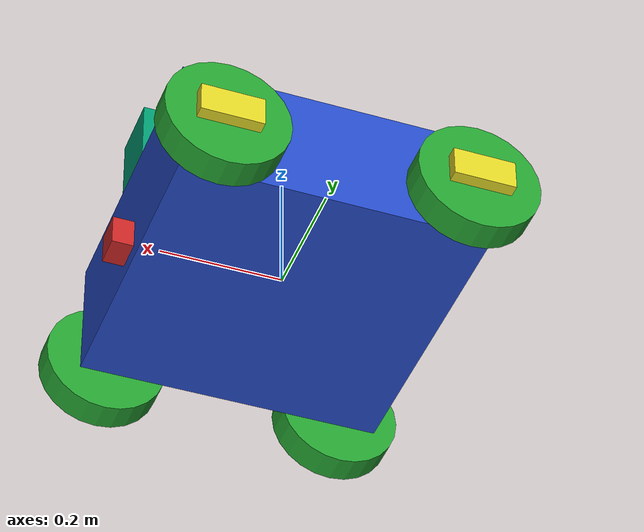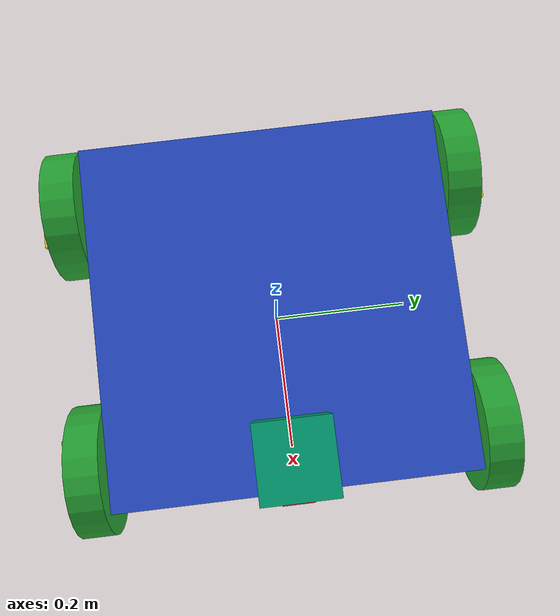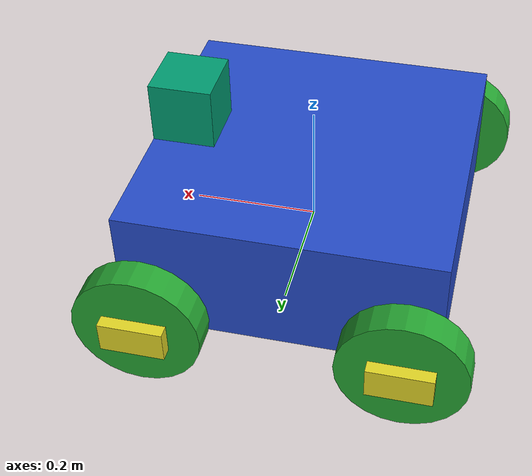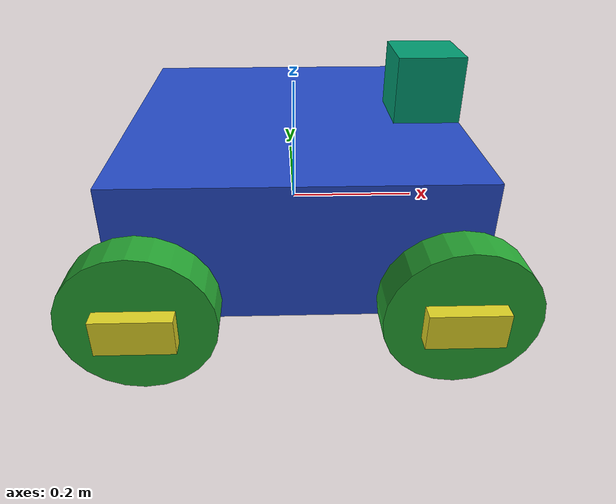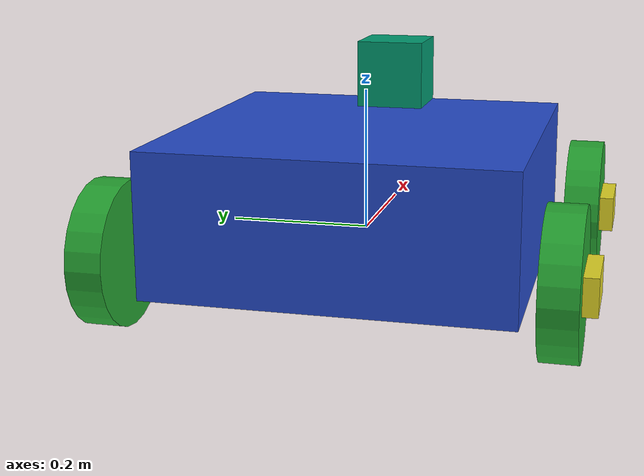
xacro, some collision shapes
<?xml version='1.0'?>

<robot name="atom" xmlns:xacro="http://www.ros.org/wiki/xacro">
	<xacro:property name="robot_name" value="atom" />
	<xacro:property name="robot_chassis_mass" value="15"/>
	<xacro:property name="robot_chassis_length" value="0.2"/>
	<xacro:property name="robot_chassis_radius" value="0.25"/>
	<xacro:property name="robot_caster_wheel_radius" value="0.05"/>
	<xacro:property name="robot_caster_wheel_radius_collision" value="0.0499"/>

	<xacro:property name="robot_wheel_mass" value="5"/>
	<xacro:property name="robot_wheel_length" value="0.05"/>
	<xacro:property name="robot_wheel_radius" value="0.1"/>

	<xacro:property name="camera_mass" value="0.1"/>
	<xacro:property name="hokoyu_mass" value="1e-5"/>

	<!-- Make Chassis of Bot -->
	<link name="chassis">
		<pose>0 0 0.1 0 0 0</pose>

		<inertial>
			<mass value="${robot_chassis_mass}"/>
      		<origin xyz="0.0 0 0" rpy=" 0 0 0"/>

      		<inertia
      			ixx="0.147116667" ixy="0" ixz="0"
      			iyy="0.334951167" iyz="0"
      			izz="0.3978345"
      		/>
		</inertial>

		<collision name="collision">
			<origin xyz="0 0 0.05" rpy=" 0 0 0"/>
			<geometry>
				<box size="0.5 0.5 0.2"/>
			</geometry>
		</collision>

		<visual name="chassis_visual">
			<origin xyz="0 0 0.05" rpy=" 0 0 0"/>
			<geometry>
				<box size="0.5 0.5 0.2"/>
			</geometry>

		</visual>

	</link>

	<!-- Right Wheel Back -->
	<link name="right_wheel_back">
		<inertial>
			<mass value="${robot_wheel_mass}"/>
			<origin xyz="0 0 0" rpy="0 1.5707 1.5707"/>
			<inertia
				ixx="0.1" ixy="0.0" ixz="0.0"
				iyy="0.1" iyz="0.0"
				izz="0.1"
			/>
		</inertial>

		<visual>
			<origin xyz="0 0 0" rpy="0 1.5707 1.5707"/>
			<geometry>
				<cylinder radius="${robot_wheel_radius}" length="${robot_wheel_length}"/>
			</geometry>
		</visual>

		<collision>
			<origin xyz="0 0 0" rpy="0 1.5707 1.5707"/>
			<geometry>
				<cylinder radius="${robot_wheel_radius}" length="${robot_wheel_length}"/>
			</geometry>
		</collision>

	</link>

	<!-- Cube -->

	<!-- Right Wheel Front-->
	<link name="right_wheel_front">
		<inertial>
			<mass value="${robot_wheel_mass}"/>
			<origin xyz="0 0 0" rpy="0 1.5707 1.5707"/>
			<inertia
				ixx="0.1" ixy="0.0" ixz="0.0"
				iyy="0.1" iyz="0.0"
				izz="0.1"
			/>
		</inertial>

		<visual>
			<origin xyz="0 0 0" rpy="0 1.5707 1.5707"/>
			<geometry>
				<cylinder radius="${robot_wheel_radius}" length="${robot_wheel_length}"/>
			</geometry>
		</visual>

		<collision>
			<origin xyz="0 0 0" rpy="0 1.5707 1.5707"/>
			<geometry>
				<cylinder radius="${robot_wheel_radius}" length="${robot_wheel_length}"/>
			</geometry>
		</collision>

	</link>

	<!-- Left wheel Back-->
	<link name="left_wheel_back">
		<inertial>
			<mass value="${robot_wheel_mass}"/>
			<origin xyz="0 0 0" rpy="0 1.5707 1.5707"/>
			<inertia
				ixx="0.1" ixy="0.0" ixz="0.0"
				iyy="0.1" iyz="0.0"
				izz="0.1"
			/>
		</inertial>

		<visual>
			<origin xyz="0 0 0" rpy="0 1.5707 1.5707"/>
			<geometry>
				<cylinder radius="${robot_wheel_radius}" length="${robot_wheel_length}"/>
			</geometry>
		</visual>

		<collision>
			<origin xyz="0 0 0" rpy="0 1.5707 1.5707"/>
			<geometry>
				<cylinder radius="${robot_wheel_radius}" length="${robot_wheel_length}"/>
			</geometry>
		</collision>

	</link>

	<!-- Left wheel Front-->
	<link name="left_wheel_front">
		<inertial>
			<mass value="${robot_wheel_mass}"/>
			<origin xyz="0 0 0" rpy="0 1.5707 1.5707"/>
			<inertia
				ixx="0.1" ixy="0.0" ixz="0.0"
				iyy="0.1" iyz="0.0"
				izz="0.1"
			/>
		</inertial>

		<visual>
			<origin xyz="0 0 0" rpy="0 1.5707 1.5707"/>
			<geometry>
				<cylinder radius="${robot_wheel_radius}" length="${robot_wheel_length}"/>
			</geometry>
		</visual>

		<collision>
			<origin xyz="0 0 0" rpy="0 1.5707 1.5707"/>
			<geometry>
				<cylinder radius="${robot_wheel_radius}" length="${robot_wheel_length}"/>
			</geometry>
		</collision>

	</link>

	<!-- Camera -->
	<link name="camera">
		<inertial>
			<mass value="${camera_mass}"/>
			<origin xyz="0 0 0" rpy="0 0 0"/>
			<inertia
		        ixx="1e-6" ixy="0.0" ixz="0.0"
		        iyy="1e-6" iyz="0.0"
		        izz="1e-6"
		      />
		</inertial>

		<visual>
			<origin xyz="0 0 0" rpy="0 0 0"/>
			<geometry>
				<box size="0.05 0.05 0.05"/>
			</geometry>
		</visual>

		<collision>
			<origin xyz="0 0 0" rpy="0 0 0"/>
			<geometry>
				<box size="0.05 0.05 0.05"/>
			</geometry>
		</collision>
	</link>

    <!-- Front Left Indicator -->
	<link name="front_left_indicator">
		<inertial>
			<mass value="0"/>
			<origin xyz="0 0 0" rpy="0 0 0"/>
			<inertia
		        ixx="1e-6" ixy="0.0" ixz="0.0"
		        iyy="1e-6" iyz="0.0"
		        izz="1e-6"
		      />
		</inertial>

		<visual>
			<origin xyz="0 0 0" rpy="0 0 0"/>
			<geometry>
				<box size="${robot_wheel_radius} 0.05 0.05"/>
			</geometry>
		</visual>

		<collision>
			<origin xyz="0 0 0" rpy="0 0 0"/>
			<geometry>
				<box size="0.0 0.0 0.0"/>
			</geometry>
		</collision>
	</link>

    <!-- Front Right Indicator -->
	<link name="front_right_indicator">
		<inertial>
			<mass value="0"/>
			<origin xyz="0 0 0" rpy="0 0 0"/>
			<inertia
		        ixx="1e-6" ixy="0.0" ixz="0.0"
		        iyy="1e-6" iyz="0.0"
		        izz="1e-6"
		      />
		</inertial>

		<visual>
			<origin xyz="0 0 0" rpy="0 0 0"/>
			<geometry>
				<box size="${robot_wheel_radius} 0.05 0.05"/>
			</geometry>
		</visual>

		<collision>
			<origin xyz="0 0 0" rpy="0 0 0"/>
			<geometry>
				<box size="0.0 0.0 0.0"/>
			</geometry>
		</collision>
	</link>

	<!-- Back Left Indicator -->
	<link name="back_left_indicator">
		<inertial>
			<mass value="0"/>
			<origin xyz="0 0 0" rpy="0 0 0"/>
			<inertia
		        ixx="1e-6" ixy="0.0" ixz="0.0"
		        iyy="1e-6" iyz="0.0"
		        izz="1e-6"
		      />
		</inertial>

		<visual>
			<origin xyz="0 0 0" rpy="0 0 0"/>
			<geometry>
				<box size="${robot_wheel_radius} 0.05 0.05"/>
			</geometry>
		</visual>

		<collision>
			<origin xyz="0 0 0" rpy="0 0 0"/>
			<geometry>
				<box size="0.0 0.0 0.0"/>
			</geometry>
		</collision>
	</link>

	<!-- Back Right Indicator -->
	<link name="back_right_indicator">
		<inertial>
			<mass value="0"/>
			<origin xyz="0 0 0" rpy="0 0 0"/>
			<inertia
		        ixx="1e-6" ixy="0.0" ixz="0.0"
		        iyy="1e-6" iyz="0.0"
		        izz="1e-6"
		      />
		</inertial>

		<visual>
			<origin xyz="0 0 0" rpy="0 0 0"/>
			<geometry>
				<box size="${robot_wheel_radius} 0.05 0.05"/>
			</geometry>
		</visual>

		<collision>
			<origin xyz="0 0 0" rpy="0 0 0"/>
			<geometry>
				<box size="0.0 0.0 0.0"/>
			</geometry>
		</collision>
	</link>

	<!-- Hokuyo Lidar -->
	<link name="hokuyo">
		<inertial>
			<mass value="${hokoyu_mass}"/>
			<origin xyz="0 0 0" rpy="0 0 0"/>

			<inertia
		        ixx="1e-6" ixy="0.0" ixz="0.0"
		        iyy="1e-6" iyz="0.0"
		        izz="1e-6"
		      />
		</inertial>

		<visual>
			<origin xyz="0 0 0" rpy="0 0 0"/>
			<geometry>
				<mesh filename="package://atom/meshes/hokuyo.dae"/>
			</geometry>
		</visual>

		<collision>
			<origin xyz="0 0 0" rpy="0 0 0"/>
			<geometry>
				<box size="0.1 0.1 0.1"/>
			</geometry>
		</collision>
	</link>

	<!-- Project center to the ground -->
	<link name="robot_footprint"></link>

	<!-- Define Joints -->

	<!-- Right Wheel Joint Back-->
	<joint type="continuous" name="right_wheel_hinge_back">
	    <origin xyz="-0.2 -0.30 0" rpy="0 0 0" />
	    <parent link="chassis"/>
	    <child link="right_wheel_back" />
	    <axis xyz="0 1 0" rpy="0 0 0" />
	    <limit effort="10000" velocity="1000" />
	    <dynamics damping="1.0" friction="1.0" />
	</joint>

	<!-- Right Wheel Joint Front-->
	<joint type="continuous" name="right_wheel_hinge_front">
	    <origin xyz="0.2 -0.30 0" rpy="0 0 0" />
	    <parent link="chassis"/>
	    <child link="right_wheel_front" />
	    <axis xyz="0 1 0" rpy="0 0 0" />
	    <limit effort="10000" velocity="1000" />
	    <dynamics damping="1.0" friction="1.0" />
	</joint>

	<!-- Left Wheel Joint Back-->
	<joint type="continuous" name="left_wheel_hinge_back">
	    <origin xyz="-0.2 0.30 0" rpy="0 0 0" />
	    <parent link="chassis"/>
	    <child link="left_wheel_back" />
	    <axis xyz="0 1 0" rpy="0 0 0" />
	    <limit effort="10000" velocity="1000" />
	    <dynamics damping="1.0" friction="1.0" />
	</joint>

	<!-- Left Wheel Joint Front-->
	<joint type="continuous" name="left_wheel_hinge_front">
	    <origin xyz="0.2 0.30 0" rpy="0 0 0" />
	    <parent link="chassis"/>
	    <child link="left_wheel_front" />
	    <axis xyz="0 1 0" rpy="0 0 0" />
	    <limit effort="10000" velocity="1000" />
	    <dynamics damping="1.0" friction="1.0" />
	</joint>

	<!-- Camera Joint -->
	<joint name="camera_joint" type="fixed">
		<origin xyz="0.26 0 0" rpy="0 0 0" />
		<parent link="chassis"/>
		<child link="camera" />
		<axis xyz="0 1 0"/>
	</joint>

	<!-- Hokoyu Joint -->
	<joint name="hokuyo_joint" type="fixed">
	    <origin xyz="0.2 0 0.2" rpy="0 0 0" />
	    <parent link="chassis"/>
	    <child link="hokuyo" />
	    <axis xyz="0 1 0"/>
	</joint>

	<joint name="robot_footprint_joint" type="fixed">
		<origin xyz="0 0 0" rpy="0 0 0" />
		<parent link="robot_footprint"/>
		<child link="chassis" />
	</joint>

    <joint name="front_left_indicator_joint" type="fixed">
	    <origin xyz="0 0.02 0" rpy="0 0 0" />
	    <parent link="left_wheel_front"/>
	    <child link="front_left_indicator" />
	    <axis xyz="0 0 0"/>
	</joint>

 	<joint name="front_right_indicator_joint" type="fixed">
	    <origin xyz="0 -0.02 0" rpy="0 0 0" />
	    <parent link="right_wheel_front"/>
	    <child link="front_right_indicator" />
	    <axis xyz="0 0 0"/>
	</joint>

	<joint name="back_left_indicator_joint" type="fixed">
	    <origin xyz="0 0.02 0" rpy="0 0 0" />
	    <parent link="left_wheel_back"/>
	    <child link="back_left_indicator" />
	    <axis xyz="0 0 0"/>
	</joint>

 	<joint name="back_right_indicator_joint" type="fixed">
	    <origin xyz="0 -0.02 0" rpy="0 0 0" />
	    <parent link="right_wheel_back"/>
	    <child link="back_right_indicator" />
	    <axis xyz="0 0 0"/>
	</joint>

	<!-- Color of bot -->
	<gazebo reference="left_wheel_front">
		<material>Gazebo/Green</material>
		<kp>1000000.0</kp> <!-- kp and kd for rubber -->
		<kd>100.0</kd>
		<mu1>1.0</mu1>
		<mu2>1.0</mu2>
		<maxVel>1.0</maxVel>
		<minDepth>0.00</minDepth>
	</gazebo>

	<gazebo reference="left_wheel_back">
		<material>Gazebo/Green</material>
		<kp>1000000.0</kp> <!-- kp and kd for rubber -->
		<kd>100.0</kd>
		<mu1>1.0</mu1>
		<mu2>1.0</mu2>
		<maxVel>1.0</maxVel>
		<minDepth>0.00</minDepth>
	</gazebo>

	<gazebo reference="right_wheel_front">
		<material>Gazebo/Green</material>
		<kp>1000000.0</kp> <!-- kp and kd for rubber -->
		<kd>100.0</kd>
		<mu1>1.0</mu1>
		<mu2>1.0</mu2>
		<maxVel>1.0</maxVel>
		<minDepth>0.00</minDepth>
	</gazebo>
	<gazebo reference="right_wheel_back">
		<material>Gazebo/Green</material>
		<kp>1000000.0</kp> <!-- kp and kd for rubber -->
		<kd>100.0</kd>
		<mu1>1.0</mu1>
		<mu2>1.0</mu2>
		<maxVel>1.0</maxVel>
		<minDepth>0.00</minDepth>
	</gazebo>

	<gazebo reference="camera">
		<material>Gazebo/Red</material>
	</gazebo>

	<gazebo reference="chassis">
		<material>Gazebo/Blue</material>
	</gazebo>

	<gazebo reference="front_left_indicator">
		<material>Gazebo/Yellow</material>
	</gazebo>

	<gazebo reference="front_right_indicator">
		<material>Gazebo/Yellow</material>
	</gazebo>

	<gazebo reference="back_left_indicator">
		<material>Gazebo/Yellow</material>
	</gazebo>

	<gazebo reference="back_right_indicator">
		<material>Gazebo/Yellow</material>
	</gazebo>

	<!-- Motor, Camera and Lidar Simulation -->
	<xacro:include filename="$(find atom)/urdf/atom.gazebo" />

</robot>
